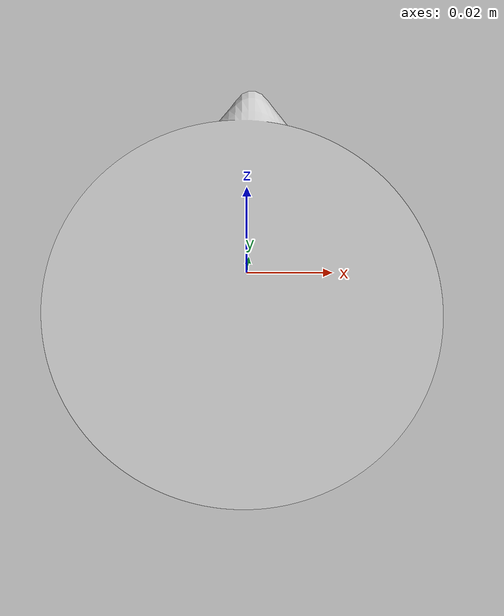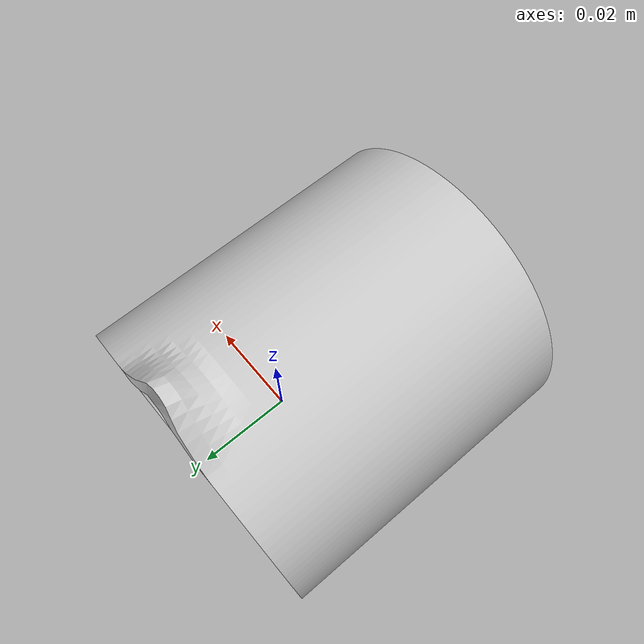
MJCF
<mujoco model="beaker_thick">
  <default>
    <default class="visual">
      <geom group="2" type="mesh" contype="0" conaffinity="0"/>
    </default>
    <default class="collision">
      <geom group="3" type="mesh"/>
    </default>
  </default>
  <asset>
    <material name="Material.001" specular="0.5" shininess="0.36" rgba="0.800000 0.800000 0.800000 1.000000"/>
    <material name="Material.003" specular="0.5" shininess="0.36" rgba="0.800000 0.800000 0.800000 1.000000"/>
    <mesh file="beaker_thick_0.obj"/>
    <mesh file="beaker_thick_1.obj"/>
    <mesh file="beaker_thick_collision_0.obj"/>
    <mesh file="beaker_thick_collision_1.obj"/>
    <mesh file="beaker_thick_collision_2.obj"/>
    <mesh file="beaker_thick_collision_3.obj"/>
    <mesh file="beaker_thick_collision_4.obj"/>
    <mesh file="beaker_thick_collision_5.obj"/>
    <mesh file="beaker_thick_collision_6.obj"/>
    <mesh file="beaker_thick_collision_7.obj"/>
    <mesh file="beaker_thick_collision_8.obj"/>
    <mesh file="beaker_thick_collision_9.obj"/>
    <mesh file="beaker_thick_collision_10.obj"/>
    <mesh file="beaker_thick_collision_11.obj"/>
    <mesh file="beaker_thick_collision_12.obj"/>
    <mesh file="beaker_thick_collision_13.obj"/>
    <mesh file="beaker_thick_collision_14.obj"/>
  </asset>
  <worldbody>
    <body name="beaker_thick">
      <geom mesh="beaker_thick_0" material="Material.003" class="visual"/>
      <geom mesh="beaker_thick_1" material="Material.001" class="visual"/>
      <geom mesh="beaker_thick_collision_0" rgba="0.8856891389456848 0.4141859571261215 0.1641737120646669 1" class="collision"/>
      <geom mesh="beaker_thick_collision_1" rgba="0.9121586604633766 0.758589884462649 0.5696111266706781 1" class="collision"/>
      <geom mesh="beaker_thick_collision_2" rgba="0.982604887038461 0.6777214680027324 0.6190808030204883 1" class="collision"/>
      <geom mesh="beaker_thick_collision_3" rgba="0.24036087810150764 0.7947981883291583 0.319044614936164 1" class="collision"/>
      <geom mesh="beaker_thick_collision_4" rgba="0.5663392755574738 0.6232593795255309 0.05370565285168971 1" class="collision"/>
      <geom mesh="beaker_thick_collision_5" rgba="0.4068721910893017 0.7875559002397131 0.14960032025372305 1" class="collision"/>
      <geom mesh="beaker_thick_collision_6" rgba="0.7380140555388208 0.9854185562668778 0.19915459731721885 1" class="collision"/>
      <geom mesh="beaker_thick_collision_7" rgba="0.5620359855634456 0.7685316702856411 0.45470344444095545 1" class="collision"/>
      <geom mesh="beaker_thick_collision_8" rgba="0.6534931749572943 0.4943436546283009 0.7860142944755002 1" class="collision"/>
      <geom mesh="beaker_thick_collision_9" rgba="0.27931497551439166 0.6264530417970007 0.6605839912370502 1" class="collision"/>
      <geom mesh="beaker_thick_collision_10" rgba="0.8851276193766443 0.9747642206525687 0.6166930785864536 1" class="collision"/>
      <geom mesh="beaker_thick_collision_11" rgba="0.8283847866895123 0.3198071185786282 0.825619763903373 1" class="collision"/>
      <geom mesh="beaker_thick_collision_12" rgba="0.9342425752374436 0.1643220438761971 0.706266282028379 1" class="collision"/>
      <geom mesh="beaker_thick_collision_13" rgba="0.9446093727370926 0.34844457306510834 0.479029586965534 1" class="collision"/>
      <geom mesh="beaker_thick_collision_14" rgba="0.6451257491595274 0.07265390416348083 0.7633155421588296 1" class="collision"/>
    </body>
  </worldbody>
</mujoco>
